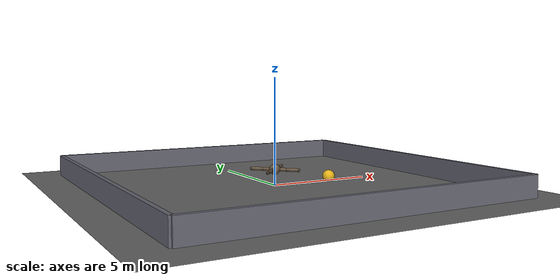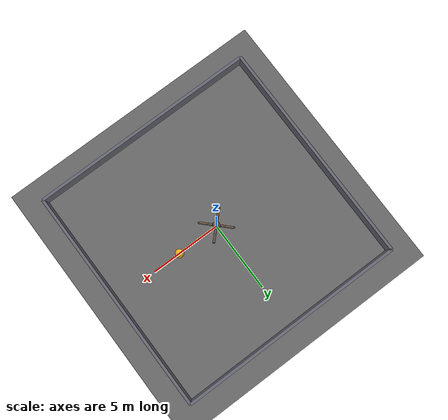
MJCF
<mujoco model="embodied_arena">
  <compiler angle="degree" inertiafromgeom="true"/>
  <include file="quadruped.xml"/>
  <statistic center="0 0 0.5" extent="6"/>
  <visual>
    <headlight diffuse="0.6 0.6 0.6"/>
    <global offwidth="640" offheight="480"/>
  </visual>
  <worldbody>
    <!-- Arena walls (8x8 arena, 1 m tall) -->
    <geom name="wall_n" type="box" pos="0 8 0.5" size="8 0.1 0.5" rgba="0.4 0.4 0.45 1"/>
    <geom name="wall_s" type="box" pos="0 -8 0.5" size="8 0.1 0.5" rgba="0.4 0.4 0.45 1"/>
    <geom name="wall_e" type="box" pos="8 0 0.5" size="0.1 8 0.5" rgba="0.4 0.4 0.45 1"/>
    <geom name="wall_w" type="box" pos="-8 0 0.5" size="0.1 8 0.5" rgba="0.4 0.4 0.45 1"/>
    <!-- Food target (mocap body so position can be set programmatically) -->
    <body name="food_body" pos="3 0 0.2" mocap="true">
      <site name="food" type="sphere" size="0.3" rgba="0.9 0.7 0.1 1"/>
    </body>
    <!-- Overhead tracking camera (follows centre of mass) -->
    <camera name="track" mode="trackcom" pos="0 -6 4" xyaxes="1 0 0 0 0.7 0.7"/>
  </worldbody>
</mujoco>

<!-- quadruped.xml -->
<mujoco model="ant">
  <option timestep="0.01" iterations="4"/>
  <default>
    <joint armature="1" damping="1" limited="true"/>
    <geom contype="0" conaffinity="0" condim="3" density="5.0" friction="1 0.5 0.5"
     rgba="0.4 0.33 0.26 1.0"/>
  </default>
  <asset>
    <texture builtin="gradient" height="100" rgb1="1 1 1" rgb2="0 0 0" type="skybox" width="100"/>
    <texture builtin="flat" height="1278" mark="cross" markrgb="1 1 1" name="texgeom" random="0.01" rgb1="0.8 0.6 0.4" rgb2="0.8 0.6 0.4" type="cube" width="127"/>
    <texture builtin="checker" height="100" name="texplane" rgb1="0 0 0" rgb2="0.8 0.8 0.8" type="2d" width="100"/>
    <material name="MatPlane" reflectance="0.5" shininess="1" specular="1" texrepeat="60 60" texture="texplane"/>
    <material name="geom" texture="texgeom" texuniform="true"/>
  </asset>
  <worldbody>
    <light cutoff="100" diffuse="1 1 1" dir="-0 0 -1.3" directional="true" exponent="1" pos="0 0 1.3" specular=".1 .1 .1"/>
    <geom conaffinity="1" condim="3" material="MatPlane" name="floor" pos="0 0 0" size="40 40 40" type="plane" rgba="0.5 0.5 0.5 1.0"/>
    <body name="torso" pos="0 0 0.75">
      <camera name="firstperson" mode="fixed" pos="0.25 0 0.2" xyaxes="0 -1 0 0.7 0 0.7"/>
      <geom name="torso_geom" pos="0 0 0" size="0.25" type="sphere"/>
      <joint armature="0" damping="0" limited="false" margin="0.01" name="root" pos="0 0 0" type="free"/>
      <body name="front_left_leg" pos="0 0 0">
        <geom fromto="0.0 0.0 0.0 0.2 0.2 0.0" name="aux_1_geom" size="0.08" type="capsule"/>
        <body name="aux_1" pos="0.2 0.2 0">
          <joint axis="0 0 1" name="hip_1" pos="0.0 0.0 0.0" range="-30 30" type="hinge"/>
          <geom fromto="0.0 0.0 0.0 0.2 0.2 0.0" name="left_leg_geom" size="0.08" type="capsule"/>
          <body pos="0.2 0.2 0">
            <joint axis="-1 1 0" name="ankle_1" pos="0.0 0.0 0.0" range="30 70" type="hinge"/>
            <geom fromto="0.0 0.0 0.0 0.4 0.4 0.0" name="left_ankle_geom" size="0.08" type="capsule"/>
            <geom name="left_foot_geom" contype="1" pos="0.4 0.4 0" size="0.08" type="sphere" mass="0"/>
          </body>
        </body>
      </body>
      <body name="front_right_leg" pos="0 0 0">
        <geom fromto="0.0 0.0 0.0 -0.2 0.2 0.0" name="aux_2_geom" size="0.08" type="capsule"/>
        <body name="aux_2" pos="-0.2 0.2 0">
          <joint axis="0 0 1" name="hip_2" pos="0.0 0.0 0.0" range="-30 30" type="hinge"/>
          <geom fromto="0.0 0.0 0.0 -0.2 0.2 0.0" name="right_leg_geom" size="0.08" type="capsule"/>
          <body pos="-0.2 0.2 0">
            <joint axis="1 1 0" name="ankle_2" pos="0.0 0.0 0.0" range="-70 -30" type="hinge"/>
            <geom fromto="0.0 0.0 0.0 -0.4 0.4 0.0" name="right_ankle_geom" size="0.08" type="capsule"/>
            <geom name="right_foot_geom" contype="1" pos="-0.4 0.4 0" size="0.08" type="sphere" mass="0"/>
          </body>
        </body>
      </body>
      <body name="back_leg" pos="0 0 0">
        <geom fromto="0.0 0.0 0.0 -0.2 -0.2 0.0" name="aux_3_geom" size="0.08" type="capsule"/>
        <body name="aux_3" pos="-0.2 -0.2 0">
          <joint axis="0 0 1" name="hip_3" pos="0.0 0.0 0.0" range="-30 30" type="hinge"/>
          <geom fromto="0.0 0.0 0.0 -0.2 -0.2 0.0" name="back_leg_geom" size="0.08" type="capsule"/>
          <body pos="-0.2 -0.2 0">
            <joint axis="-1 1 0" name="ankle_3" pos="0.0 0.0 0.0" range="-70 -30" type="hinge"/>
            <geom fromto="0.0 0.0 0.0 -0.4 -0.4 0.0" name="third_ankle_geom" size="0.08" type="capsule"/>
            <geom name="third_foot_geom" contype="1" pos="-0.4 -0.4 0" size="0.08" type="sphere" mass="0"/>
          </body>
        </body>
      </body>
      <body name="right_back_leg" pos="0 0 0">
        <geom fromto="0.0 0.0 0.0 0.2 -0.2 0.0" name="aux_4_geom" size="0.08" type="capsule"/>
        <body name="aux_4" pos="0.2 -0.2 0">
          <joint axis="0 0 1" name="hip_4" pos="0.0 0.0 0.0" range="-30 30" type="hinge"/>
          <geom fromto="0.0 0.0 0.0 0.2 -0.2 0.0" name="rightback_leg_geom" size="0.08" type="capsule"/>
          <body pos="0.2 -0.2 0">
            <joint axis="1 1 0" name="ankle_4" pos="0.0 0.0 0.0" range="30 70" type="hinge"/>
            <geom fromto="0.0 0.0 0.0 0.4 -0.4 0.0" name="fourth_ankle_geom" size="0.08" type="capsule"/>
            <geom name="fourth_foot_geom" contype="1" pos="0.4 -0.4 0" size="0.08" type="sphere" mass="0"/>
          </body>
        </body>
      </body>
    </body>
  </worldbody>
  <actuator>
    <motor ctrllimited="true" ctrlrange="-1.0 1.0" joint="hip_4" gear="150"/>
    <motor ctrllimited="true" ctrlrange="-1.0 1.0" joint="ankle_4" gear="150"/>
    <motor ctrllimited="true" ctrlrange="-1.0 1.0" joint="hip_1" gear="150"/>
    <motor ctrllimited="true" ctrlrange="-1.0 1.0" joint="ankle_1" gear="150"/>
    <motor ctrllimited="true" ctrlrange="-1.0 1.0" joint="hip_2" gear="150"/>
    <motor ctrllimited="true" ctrlrange="-1.0 1.0" joint="ankle_2" gear="150"/>
    <motor ctrllimited="true" ctrlrange="-1.0 1.0" joint="hip_3" gear="150"/>
    <motor ctrllimited="true" ctrlrange="-1.0 1.0" joint="ankle_3" gear="150"/>
  </actuator>
</mujoco>
